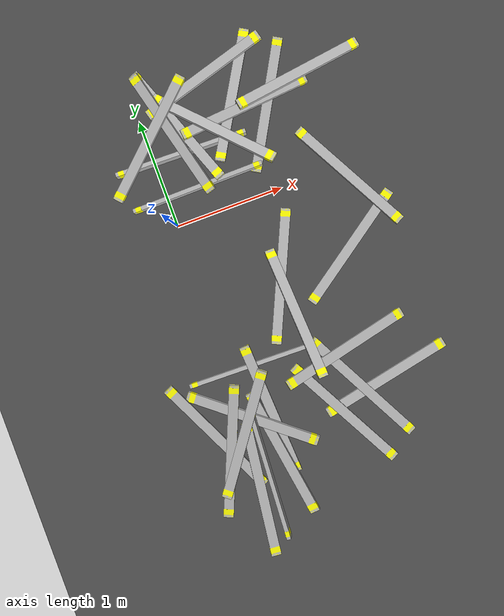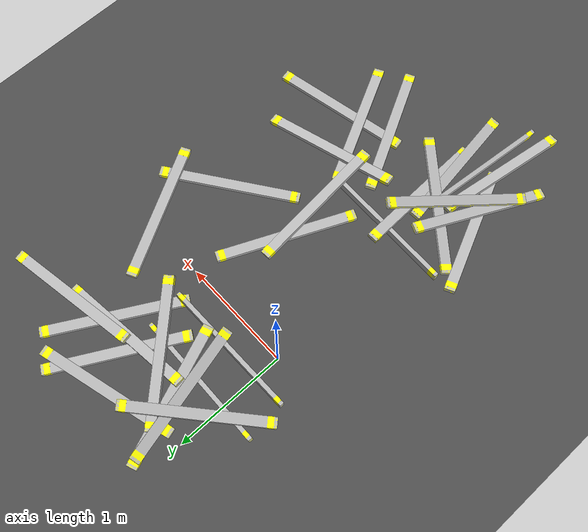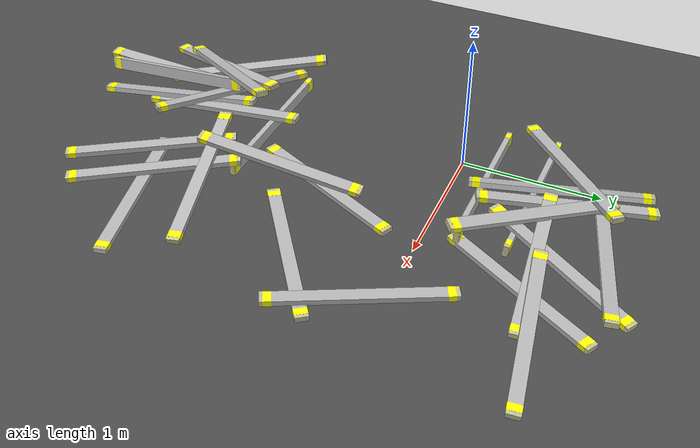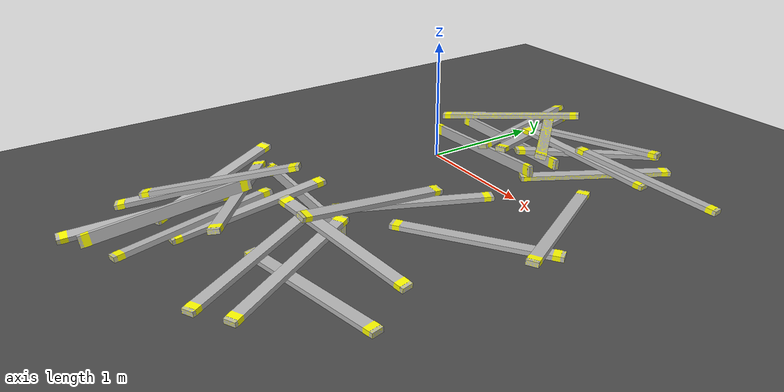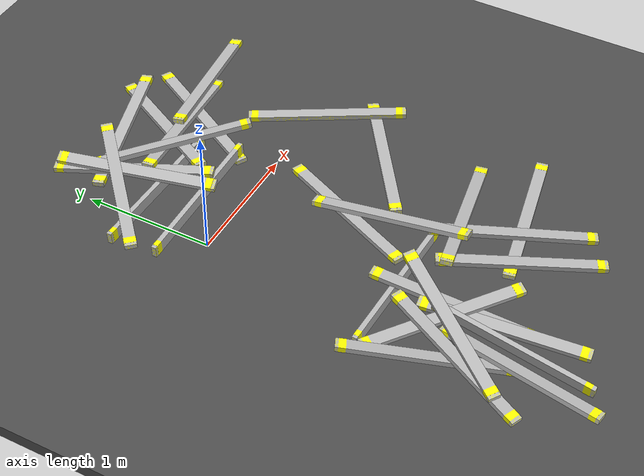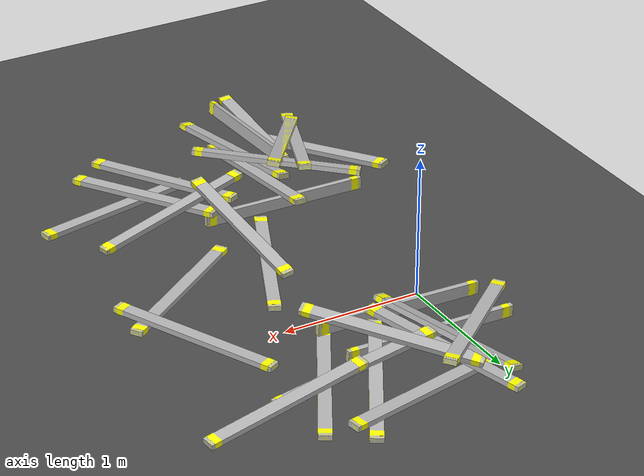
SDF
<sdf version="1.6">
 <world name="default">
  <model name="ground_plane">
   <static>1</static>
   <link name="link">
    <collision name="collision">
     <geometry><plane><normal>0 0 1</normal><size>100 100</size></plane></geometry>
     <surface><friction><ode><mu>100</mu><mu2>50</mu2></ode></friction></surface>
    </collision>
    <visual name="visual">
     <cast_shadows>0</cast_shadows>
     <geometry><plane><normal>0 0 1</normal><size>100 100</size></plane></geometry>
     <material>
      <script><uri>file://media/materials/scripts/gazebo.material</uri><name>Gazebo/Grey</name></script>
     </material>
    </visual>
   </link>
  </model>
  <model name="asphalt_plane">
   <static>1</static>
   <link name="link">
    <collision name="collision"><geometry><box><size>20 20 0.1</size></box></geometry></collision>
    <visual name="visual">
     <cast_shadows>0</cast_shadows>
     <geometry><box><size>20 20 0.1</size></box></geometry>
     <material>
      <script>
       <uri>model://asphalt_plane/materials/scripts</uri>
       <uri>model://asphalt_plane/materials/textures</uri>
       <name>vrc/asphalt</name>
      </script>
     </material>
    </visual>
   </link>
   <pose>0.013797 -0.037077 0 0 -0 0</pose>
  </model>
  <model name="lumber_2x4x48">
   <link name="link">
    <inertial>
     <mass>1.4111</mass>
     <inertia><ixx>0.0011</ixx><ixy>0</ixy><ixz>0</ixz><iyy>0.1771</iyy><iyz>0</iyz><izz>0.1763</izz></inertia>
    </inertial>
    <collision name="collision">
     <geometry><box><size>1.2192 0.038 0.0888</size></box></geometry>
     <surface>
      <bounce><restitution_coefficient>0.01</restitution_coefficient><threshold>5</threshold></bounce>
      <friction><ode><mu>5</mu><mu2>5</mu2></ode></friction>
      <contact>
       <ode>
        <soft_cfm>0.001</soft_cfm>
        <kp>10000</kp>
        <kd>1000</kd>
        <max_vel>0.01</max_vel>
        <min_depth>0.001</min_depth>
       </ode>
      </contact>
     </surface>
    </collision>
    <visual name="visual">
     <geometry><mesh><uri>model://drc_practice_2x4/meshes/2x4x48.dae</uri><scale>1 1 1</scale></mesh></geometry>
    </visual>
   </link>
   <pose>0.295779 0.247105 0.111808 -0.018486 -0.030942 0.006858</pose>
  </model>
  <model name="lumber_2x4x48_clone_1">
   <link name="link">
    <inertial>
     <mass>1.4111</mass>
     <inertia><ixx>0.0011</ixx><ixy>0</ixy><ixz>0</ixz><iyy>0.1771</iyy><iyz>0</iyz><izz>0.1763</izz></inertia>
    </inertial>
    <collision name="collision">
     <geometry><box><size>1.2192 0.038 0.0888</size></box></geometry>
     <surface>
      <bounce><restitution_coefficient>0.01</restitution_coefficient><threshold>5</threshold></bounce>
      <friction><ode><mu>5</mu><mu2>5</mu2></ode></friction>
      <contact>
       <ode>
        <soft_cfm>0.001</soft_cfm>
        <kp>10000</kp>
        <kd>1000</kd>
        <max_vel>0.01</max_vel>
        <min_depth>0.001</min_depth>
       </ode>
      </contact>
     </surface>
    </collision>
    <visual name="visual">
     <geometry><mesh><uri>model://drc_practice_2x4/meshes/2x4x48.dae</uri><scale>1 1 1</scale></mesh></geometry>
    </visual>
   </link>
   <pose>0.259884 0.582934 0.090207 -0.084588 0.000416 -0.020497</pose>
  </model>
  <model name="lumber_2x4x48_clone_3_clone_0">
   <link name="link">
    <inertial>
     <mass>1.4111</mass>
     <inertia><ixx>0.0011</ixx><ixy>0</ixy><ixz>0</ixz><iyy>0.1771</iyy><iyz>0</iyz><izz>0.1763</izz></inertia>
    </inertial>
    <collision name="collision">
     <geometry><box><size>1.2192 0.038 0.0888</size></box></geometry>
     <surface>
      <bounce><restitution_coefficient>0.01</restitution_coefficient><threshold>5</threshold></bounce>
      <friction><ode><mu>5</mu><mu2>5</mu2></ode></friction>
      <contact>
       <ode>
        <soft_cfm>0.001</soft_cfm>
        <kp>10000</kp>
        <kd>1000</kd>
        <max_vel>0.01</max_vel>
        <min_depth>0.001</min_depth>
       </ode>
      </contact>
     </surface>
    </collision>
    <visual name="visual">
     <geometry><mesh><uri>model://drc_practice_2x4/meshes/2x4x48.dae</uri><scale>1 1 1</scale></mesh></geometry>
    </visual>
   </link>
   <pose>0.048998 0.775245 0.217572 1.53349 -0.090464 0.730563</pose>
  </model>
  <model name="lumber_2x4x48_clone_3_clone_0_clone_0_clone_0">
   <link name="link">
    <inertial>
     <mass>1.4111</mass>
     <inertia><ixx>0.0011</ixx><ixy>0</ixy><ixz>0</ixz><iyy>0.1771</iyy><iyz>0</iyz><izz>0.1763</izz></inertia>
    </inertial>
    <collision name="collision">
     <geometry><box><size>1.2192 0.038 0.0888</size></box></geometry>
     <surface>
      <bounce><restitution_coefficient>0.01</restitution_coefficient><threshold>5</threshold></bounce>
      <friction><ode><mu>5</mu><mu2>5</mu2></ode></friction>
      <contact>
       <ode>
        <soft_cfm>0.001</soft_cfm>
        <kp>10000</kp>
        <kd>1000</kd>
        <max_vel>0.01</max_vel>
        <min_depth>0.001</min_depth>
       </ode>
      </contact>
     </surface>
    </collision>
    <visual name="visual">
     <geometry><mesh><uri>model://drc_practice_2x4/meshes/2x4x48.dae</uri><scale>1 1 1</scale></mesh></geometry>
    </visual>
   </link>
   <pose>0.045613 -1.83591 0.165662 1.42288 0.048365 2.46669</pose>
  </model>
  <model name="lumber_2x4x48_clone_0_clone_0">
   <link name="link">
    <inertial>
     <mass>1.4111</mass>
     <inertia><ixx>0.0011</ixx><ixy>0</ixy><ixz>0</ixz><iyy>0.1771</iyy><iyz>0</iyz><izz>0.1763</izz></inertia>
    </inertial>
    <collision name="collision">
     <geometry><box><size>1.2192 0.038 0.0888</size></box></geometry>
     <surface>
      <bounce><restitution_coefficient>0.01</restitution_coefficient><threshold>5</threshold></bounce>
      <friction><ode><mu>5</mu><mu2>5</mu2></ode></friction>
      <contact>
       <ode>
        <soft_cfm>0.001</soft_cfm>
        <kp>10000</kp>
        <kd>1000</kd>
        <max_vel>0.01</max_vel>
        <min_depth>0.001</min_depth>
       </ode>
      </contact>
     </surface>
    </collision>
    <visual name="visual">
     <geometry><mesh><uri>model://drc_practice_2x4/meshes/2x4x48.dae</uri><scale>1 1 1</scale></mesh></geometry>
    </visual>
   </link>
   <pose>0.22463 -1.40201 0.091879 -0.008334 0.000917 -0.020815</pose>
  </model>
  <model name="lumber_2x4x48_clone_3_clone_0_clone_1_clone_clone">
   <link name="link">
    <inertial>
     <mass>1.4111</mass>
     <inertia><ixx>0.0011</ixx><ixy>0</ixy><ixz>0</ixz><iyy>0.1771</iyy><iyz>0</iyz><izz>0.1763</izz></inertia>
    </inertial>
    <collision name="collision">
     <geometry><box><size>1.2192 0.038 0.0888</size></box></geometry>
     <surface>
      <bounce><restitution_coefficient>0.01</restitution_coefficient><threshold>5</threshold></bounce>
      <friction><ode><mu>5</mu><mu2>5</mu2></ode></friction>
      <contact>
       <ode>
        <soft_cfm>0.001</soft_cfm>
        <kp>10000</kp>
        <kd>1000</kd>
        <max_vel>0.01</max_vel>
        <min_depth>0.001</min_depth>
       </ode>
      </contact>
     </surface>
    </collision>
    <visual name="visual">
     <geometry><mesh><uri>model://drc_practice_2x4/meshes/2x4x48.dae</uri><scale>1 1 1</scale></mesh></geometry>
    </visual>
   </link>
   <pose>0.01851 -2.35439 0.166804 -0.140389 -0.118465 1.50446</pose>
  </model>
  <model name="lumber_2x4x48_clone_3_clone_0_clone_clone_0">
   <link name="link">
    <inertial>
     <mass>1.4111</mass>
     <inertia><ixx>0.0011</ixx><ixy>0</ixy><ixz>0</ixz><iyy>0.1771</iyy><iyz>0</iyz><izz>0.1763</izz></inertia>
    </inertial>
    <collision name="collision">
     <geometry><box><size>1.2192 0.038 0.0888</size></box></geometry>
     <surface>
      <bounce><restitution_coefficient>0.01</restitution_coefficient><threshold>5</threshold></bounce>
      <friction><ode><mu>5</mu><mu2>5</mu2></ode></friction>
      <contact>
       <ode>
        <soft_cfm>0.001</soft_cfm>
        <kp>10000</kp>
        <kd>1000</kd>
        <max_vel>0.01</max_vel>
        <min_depth>0.001</min_depth>
       </ode>
      </contact>
     </surface>
    </collision>
    <visual name="visual">
     <geometry><mesh><uri>model://drc_practice_2x4/meshes/2x4x48.dae</uri><scale>1 1 1</scale></mesh></geometry>
    </visual>
   </link>
   <pose>1.39218 -0.712522 0.067433 1.56623 0.000289 0.613652</pose>
  </model>
  <model name="lumber_2x4x48_clone_3_clone_0_clone_1_clone_0">
   <link name="link">
    <inertial>
     <mass>1.4111</mass>
     <inertia><ixx>0.0011</ixx><ixy>0</ixy><ixz>0</ixz><iyy>0.1771</iyy><iyz>0</iyz><izz>0.1763</izz></inertia>
    </inertial>
    <collision name="collision">
     <geometry><box><size>1.2192 0.038 0.0888</size></box></geometry>
     <surface>
      <bounce><restitution_coefficient>0.01</restitution_coefficient><threshold>5</threshold></bounce>
      <friction><ode><mu>5</mu><mu2>5</mu2></ode></friction>
      <contact>
       <ode>
        <soft_cfm>0.001</soft_cfm>
        <kp>10000</kp>
        <kd>1000</kd>
        <max_vel>0.01</max_vel>
        <min_depth>0.001</min_depth>
       </ode>
      </contact>
     </surface>
    </collision>
    <visual name="visual">
     <geometry><mesh><uri>model://drc_practice_2x4/meshes/2x4x48.dae</uri><scale>1 1 1</scale></mesh></geometry>
    </visual>
   </link>
   <pose>0.252357 0.755223 0.191565 1.29155 -0.009358 1.81656</pose>
  </model>
  <model name="lumber_2x4x48_clone_3_clone_0_clone_1_clone_1">
   <link name="link">
    <inertial>
     <mass>1.4111</mass>
     <inertia><ixx>0.0011</ixx><ixy>0</ixy><ixz>0</ixz><iyy>0.1771</iyy><iyz>0</iyz><izz>0.1763</izz></inertia>
    </inertial>
    <collision name="collision">
     <geometry><box><size>1.2192 0.038 0.0888</size></box></geometry>
     <surface>
      <bounce><restitution_coefficient>0.01</restitution_coefficient><threshold>5</threshold></bounce>
      <friction><ode><mu>5</mu><mu2>5</mu2></ode></friction>
      <contact>
       <ode>
        <soft_cfm>0.001</soft_cfm>
        <kp>10000</kp>
        <kd>1000</kd>
        <max_vel>0.01</max_vel>
        <min_depth>0.001</min_depth>
       </ode>
      </contact>
     </surface>
    </collision>
    <visual name="visual">
     <geometry><mesh><uri>model://drc_practice_2x4/meshes/2x4x48.dae</uri><scale>1 1 1</scale></mesh></geometry>
    </visual>
   </link>
   <pose>-0.107879 -2.46773 0.109949 -1.70153 0.060185 -1.70032</pose>
  </model>
  <model name="lumber_2x4x48_clone_3_clone_0_clone_1_clone_2">
   <link name="link">
    <inertial>
     <mass>1.4111</mass>
     <inertia><ixx>0.0011</ixx><ixy>0</ixy><ixz>0</ixz><iyy>0.1771</iyy><iyz>0</iyz><izz>0.1763</izz></inertia>
    </inertial>
    <collision name="collision">
     <geometry><box><size>1.2192 0.038 0.0888</size></box></geometry>
     <surface>
      <bounce><restitution_coefficient>0.01</restitution_coefficient><threshold>5</threshold></bounce>
      <friction><ode><mu>5</mu><mu2>5</mu2></ode></friction>
      <contact>
       <ode>
        <soft_cfm>0.001</soft_cfm>
        <kp>10000</kp>
        <kd>1000</kd>
        <max_vel>0.01</max_vel>
        <min_depth>0.001</min_depth>
       </ode>
      </contact>
     </surface>
    </collision>
    <visual name="visual">
     <geometry><mesh><uri>model://drc_practice_2x4/meshes/2x4x48.dae</uri><scale>1 1 1</scale></mesh></geometry>
    </visual>
   </link>
   <pose>0.221416 -1.82475 0.116837 -1.56047 0.082432 -1.52315</pose>
  </model>
  <model name="lumber_2x4x48_clone_3_clone_0_clone_clone_0_clone_0_clone">
   <link name="link">
    <inertial>
     <mass>1.4111</mass>
     <inertia><ixx>0.0011</ixx><ixy>0</ixy><ixz>0</ixz><iyy>0.1771</iyy><iyz>0</iyz><izz>0.1763</izz></inertia>
    </inertial>
    <collision name="collision">
     <geometry><box><size>1.2192 0.038 0.0888</size></box></geometry>
     <surface>
      <bounce><restitution_coefficient>0.01</restitution_coefficient><threshold>5</threshold></bounce>
      <friction><ode><mu>5</mu><mu2>5</mu2></ode></friction>
      <contact>
       <ode>
        <soft_cfm>0.001</soft_cfm>
        <kp>10000</kp>
        <kd>1000</kd>
        <max_vel>0.01</max_vel>
        <min_depth>0.001</min_depth>
       </ode>
      </contact>
     </surface>
    </collision>
    <visual name="visual">
     <geometry><mesh><uri>model://drc_practice_2x4/meshes/2x4x48.dae</uri><scale>1 1 1</scale></mesh></geometry>
    </visual>
   </link>
   <pose>0.606725 0.671106 0.228601 -1.76493 -0.127359 -0.83044</pose>
  </model>
  <model name="lumber_2x4x48_clone_3_clone_0_clone_clone_0_clone_0_clone_4">
   <link name="link">
    <inertial>
     <mass>1.4111</mass>
     <inertia><ixx>0.0011</ixx><ixy>0</ixy><ixz>0</ixz><iyy>0.1771</iyy><iyz>0</iyz><izz>0.1763</izz></inertia>
    </inertial>
    <collision name="collision">
     <geometry><box><size>1.2192 0.038 0.0888</size></box></geometry>
     <surface>
      <bounce><restitution_coefficient>0.01</restitution_coefficient><threshold>5</threshold></bounce>
      <friction><ode><mu>5</mu><mu2>5</mu2></ode></friction>
      <contact>
       <ode>
        <soft_cfm>0.001</soft_cfm>
        <kp>10000</kp>
        <kd>1000</kd>
        <max_vel>0.01</max_vel>
        <min_depth>0.001</min_depth>
       </ode>
      </contact>
     </surface>
    </collision>
    <visual name="visual">
     <geometry><mesh><uri>model://drc_practice_2x4/meshes/2x4x48.dae</uri><scale>1 1 1</scale></mesh></geometry>
    </visual>
   </link>
   <pose>1.05444 -1.91325 0.112046 -1.57473 0.073113 -1.08771</pose>
  </model>
  <model name="lumber_2x4x48_clone_3_clone_0_clone_clone_0_clone_0_clone_5">
   <link name="link">
    <inertial>
     <mass>1.4111</mass>
     <inertia><ixx>0.0011</ixx><ixy>0</ixy><ixz>0</ixz><iyy>0.1771</iyy><iyz>0</iyz><izz>0.1763</izz></inertia>
    </inertial>
    <collision name="collision">
     <geometry><box><size>1.2192 0.038 0.0888</size></box></geometry>
     <surface>
      <bounce><restitution_coefficient>0.01</restitution_coefficient><threshold>5</threshold></bounce>
      <friction><ode><mu>5</mu><mu2>5</mu2></ode></friction>
      <contact>
       <ode>
        <soft_cfm>0.001</soft_cfm>
        <kp>10000</kp>
        <kd>1000</kd>
        <max_vel>0.01</max_vel>
        <min_depth>0.001</min_depth>
       </ode>
      </contact>
     </surface>
    </collision>
    <visual name="visual">
     <geometry><mesh><uri>model://drc_practice_2x4/meshes/2x4x48.dae</uri><scale>1 1 1</scale></mesh></geometry>
    </visual>
   </link>
   <pose>1.5969 -0.113184 0.090619 -1.56747 -0.037507 -1.08262</pose>
  </model>
  <model name="lumber_2x4x48_clone_3_clone_0_clone_clone_0_clone_0_clone_8">
   <link name="link">
    <inertial>
     <mass>1.4111</mass>
     <inertia><ixx>0.0011</ixx><ixy>0</ixy><ixz>0</ixz><iyy>0.1771</iyy><iyz>0</iyz><izz>0.1763</izz></inertia>
    </inertial>
    <collision name="collision">
     <geometry><box><size>1.2192 0.038 0.0888</size></box></geometry>
     <surface>
      <bounce><restitution_coefficient>0.01</restitution_coefficient><threshold>5</threshold></bounce>
      <friction><ode><mu>5</mu><mu2>5</mu2></ode></friction>
      <contact>
       <ode>
        <soft_cfm>0.001</soft_cfm>
        <kp>10000</kp>
        <kd>1000</kd>
        <max_vel>0.01</max_vel>
        <min_depth>0.001</min_depth>
       </ode>
      </contact>
     </surface>
    </collision>
    <visual name="visual">
     <geometry><mesh><uri>model://drc_practice_2x4/meshes/2x4x48.dae</uri><scale>1 1 1</scale></mesh></geometry>
    </visual>
   </link>
   <pose>0.825363 -2.07883 0.10103 1.58693 0.053107 -1.08189</pose>
  </model>
  <model name="lumber_2x4x48_clone_3_clone_0_clone_clone_0_clone_0_clone_0_clone_0">
   <link name="link">
    <inertial>
     <mass>1.4111</mass>
     <inertia><ixx>0.0011</ixx><ixy>0</ixy><ixz>0</ixz><iyy>0.1771</iyy><iyz>0</iyz><izz>0.1763</izz></inertia>
    </inertial>
    <collision name="collision">
     <geometry><box><size>1.2192 0.038 0.0888</size></box></geometry>
     <surface>
      <bounce><restitution_coefficient>0.01</restitution_coefficient><threshold>5</threshold></bounce>
      <friction><ode><mu>5</mu><mu2>5</mu2></ode></friction>
      <contact>
       <ode>
        <soft_cfm>0.001</soft_cfm>
        <kp>10000</kp>
        <kd>1000</kd>
        <max_vel>0.01</max_vel>
        <min_depth>0.001</min_depth>
       </ode>
      </contact>
     </surface>
    </collision>
    <visual name="visual">
     <geometry><mesh><uri>model://drc_practice_2x4/meshes/2x4x48.dae</uri><scale>1 1 1</scale></mesh></geometry>
    </visual>
   </link>
   <pose>-0.310883 -1.88664 0.14279 -1.64254 0.119744 -1.15004</pose>
  </model>
  <model name="lumber_2x4x48_clone_3_clone_0_clone_clone_0_clone_0_clone_10">
   <link name="link">
    <inertial>
     <mass>1.4111</mass>
     <inertia><ixx>0.0011</ixx><ixy>0</ixy><ixz>0</ixz><iyy>0.1771</iyy><iyz>0</iyz><izz>0.1763</izz></inertia>
    </inertial>
    <collision name="collision">
     <geometry><box><size>1.2192 0.038 0.0888</size></box></geometry>
     <surface>
      <bounce><restitution_coefficient>0.01</restitution_coefficient><threshold>5</threshold></bounce>
      <friction><ode><mu>5</mu><mu2>5</mu2></ode></friction>
      <contact>
       <ode>
        <soft_cfm>0.001</soft_cfm>
        <kp>10000</kp>
        <kd>1000</kd>
        <max_vel>0.01</max_vel>
        <min_depth>0.001</min_depth>
       </ode>
      </contact>
     </surface>
    </collision>
    <visual name="visual">
     <geometry><mesh><uri>model://drc_practice_2x4/meshes/2x4x48.dae</uri><scale>1 1 1</scale></mesh></geometry>
    </visual>
   </link>
   <pose>0.3131 0.824211 0.133067 -1.53476 -0.083133 -1.219</pose>
  </model>
  <model name="lumber_2x4x48_clone_3_clone_0_clone_clone_0_clone_0_clone_11">
   <link name="link">
    <inertial>
     <mass>1.4111</mass>
     <inertia><ixx>0.0011</ixx><ixy>0</ixy><ixz>0</ixz><iyy>0.1771</iyy><iyz>0</iyz><izz>0.1763</izz></inertia>
    </inertial>
    <collision name="collision">
     <geometry><box><size>1.2192 0.038 0.0888</size></box></geometry>
     <surface>
      <bounce><restitution_coefficient>0.01</restitution_coefficient><threshold>5</threshold></bounce>
      <friction><ode><mu>5</mu><mu2>5</mu2></ode></friction>
      <contact>
       <ode>
        <soft_cfm>0.001</soft_cfm>
        <kp>10000</kp>
        <kd>1000</kd>
        <max_vel>0.01</max_vel>
        <min_depth>0.001</min_depth>
       </ode>
      </contact>
     </surface>
    </collision>
    <visual name="visual">
     <geometry><mesh><uri>model://drc_practice_2x4/meshes/2x4x48.dae</uri><scale>1 1 1</scale></mesh></geometry>
    </visual>
   </link>
   <pose>-0.232627 -2.05006 0.163119 1.56222 0.157755 -1.97429</pose>
  </model>
  <model name="lumber_2x4x48_clone_3_clone_0_clone_clone_0_clone_0_clone_11_clone">
   <link name="link">
    <inertial>
     <mass>1.4111</mass>
     <inertia><ixx>0.0011</ixx><ixy>0</ixy><ixz>0</ixz><iyy>0.1771</iyy><iyz>0</iyz><izz>0.1763</izz></inertia>
    </inertial>
    <collision name="collision">
     <geometry><box><size>1.2192 0.038 0.0888</size></box></geometry>
     <surface>
      <bounce><restitution_coefficient>0.01</restitution_coefficient><threshold>5</threshold></bounce>
      <friction><ode><mu>5</mu><mu2>5</mu2></ode></friction>
      <contact>
       <ode>
        <soft_cfm>0.001</soft_cfm>
        <kp>10000</kp>
        <kd>1000</kd>
        <max_vel>0.01</max_vel>
        <min_depth>0.001</min_depth>
       </ode>
      </contact>
     </surface>
    </collision>
    <visual name="visual">
     <geometry><mesh><uri>model://drc_practice_2x4/meshes/2x4x48.dae</uri><scale>1 1 1</scale></mesh></geometry>
    </visual>
   </link>
   <pose>-0.064556 -1.93496 0.258255 1.67682 0.20084 -2.19219</pose>
  </model>
  <model name="lumber_2x4x48_clone_3_clone_0_clone_clone_0_clone_0_clone_11_clone_11">
   <link name="link">
    <inertial>
     <mass>1.4111</mass>
     <inertia><ixx>0.0011</ixx><ixy>0</ixy><ixz>0</ixz><iyy>0.1771</iyy><iyz>0</iyz><izz>0.1763</izz></inertia>
    </inertial>
    <collision name="collision">
     <geometry><box><size>1.2192 0.038 0.0888</size></box></geometry>
     <surface>
      <bounce><restitution_coefficient>0.01</restitution_coefficient><threshold>5</threshold></bounce>
      <friction><ode><mu>5</mu><mu2>5</mu2></ode></friction>
      <contact>
       <ode>
        <soft_cfm>0.001</soft_cfm>
        <kp>10000</kp>
        <kd>1000</kd>
        <max_vel>0.01</max_vel>
        <min_depth>0.001</min_depth>
       </ode>
      </contact>
     </surface>
    </collision>
    <visual name="visual">
     <geometry><mesh><uri>model://drc_practice_2x4/meshes/2x4x48.dae</uri><scale>1 1 1</scale></mesh></geometry>
    </visual>
   </link>
   <pose>0.86844 0.914016 0.112279 1.58973 -0.075042 -2.09875</pose>
  </model>
  <model name="lumber_2x4x48_clone_3_clone_0_clone_clone_0_clone_0_clone_11_clone_12">
   <link name="link">
    <inertial>
     <mass>1.4111</mass>
     <inertia><ixx>0.0011</ixx><ixy>0</ixy><ixz>0</ixz><iyy>0.1771</iyy><iyz>0</iyz><izz>0.1763</izz></inertia>
    </inertial>
    <collision name="collision">
     <geometry><box><size>1.2192 0.038 0.0888</size></box></geometry>
     <surface>
      <bounce><restitution_coefficient>0.01</restitution_coefficient><threshold>5</threshold></bounce>
      <friction><ode><mu>5</mu><mu2>5</mu2></ode></friction>
      <contact>
       <ode>
        <soft_cfm>0.001</soft_cfm>
        <kp>10000</kp>
        <kd>1000</kd>
        <max_vel>0.01</max_vel>
        <min_depth>0.001</min_depth>
       </ode>
      </contact>
     </surface>
    </collision>
    <visual name="visual">
     <geometry><mesh><uri>model://drc_practice_2x4/meshes/2x4x48.dae</uri><scale>1 1 1</scale></mesh></geometry>
    </visual>
   </link>
   <pose>1.13103 0.733805 0.067402 1.57703 0.000374 -2.0847</pose>
  </model>
  <model name="lumber_2x4x48_clone_3_clone_0_clone_clone_0_clone_0_clone_11_clone_13">
   <link name="link">
    <inertial>
     <mass>1.4111</mass>
     <inertia><ixx>0.0011</ixx><ixy>0</ixy><ixz>0</ixz><iyy>0.1771</iyy><iyz>0</iyz><izz>0.1763</izz></inertia>
    </inertial>
    <collision name="collision">
     <geometry><box><size>1.2192 0.038 0.0888</size></box></geometry>
     <surface>
      <bounce><restitution_coefficient>0.01</restitution_coefficient><threshold>5</threshold></bounce>
      <friction><ode><mu>5</mu><mu2>5</mu2></ode></friction>
      <contact>
       <ode>
        <soft_cfm>0.001</soft_cfm>
        <kp>10000</kp>
        <kd>1000</kd>
        <max_vel>0.01</max_vel>
        <min_depth>0.001</min_depth>
       </ode>
      </contact>
     </surface>
    </collision>
    <visual name="visual">
     <geometry><mesh><uri>model://drc_practice_2x4/meshes/2x4x48.dae</uri><scale>1 1 1</scale></mesh></geometry>
    </visual>
   </link>
   <pose>0.717058 -0.749332 0.067492 1.57438 -7.1e-05 -1.99457</pose>
  </model>
  <model name="lumber_2x4x48_clone_3_clone_0_clone_clone_0_clone_0_clone_11_clone_14_clone_clone">
   <link name="link">
    <inertial>
     <mass>1.4111</mass>
     <inertia><ixx>0.0011</ixx><ixy>0</ixy><ixz>0</ixz><iyy>0.1771</iyy><iyz>0</iyz><izz>0.1763</izz></inertia>
    </inertial>
    <collision name="collision">
     <geometry><box><size>1.2192 0.038 0.0888</size></box></geometry>
     <surface>
      <bounce><restitution_coefficient>0.01</restitution_coefficient><threshold>5</threshold></bounce>
      <friction><ode><mu>5</mu><mu2>5</mu2></ode></friction>
      <contact>
       <ode>
        <soft_cfm>0.001</soft_cfm>
        <kp>10000</kp>
        <kd>1000</kd>
        <max_vel>0.01</max_vel>
        <min_depth>0.001</min_depth>
       </ode>
      </contact>
     </surface>
    </collision>
    <visual name="visual">
     <geometry><mesh><uri>model://drc_practice_2x4/meshes/2x4x48.dae</uri><scale>1 1 1</scale></mesh></geometry>
    </visual>
   </link>
   <pose>1.28113 -1.92039 0.06724 1.56104 0.000508 -2.93903</pose>
  </model>
  <model name="lumber_2x4x48_clone_3_clone_0_clone_clone_0_clone_0_clone_11_clone_14_clone_clone_0">
   <link name="link">
    <inertial>
     <mass>1.4111</mass>
     <inertia><ixx>0.0011</ixx><ixy>0</ixy><ixz>0</ixz><iyy>0.1771</iyy><iyz>0</iyz><izz>0.1763</izz></inertia>
    </inertial>
    <collision name="collision">
     <geometry><box><size>1.2192 0.038 0.0888</size></box></geometry>
     <surface>
      <bounce><restitution_coefficient>0.01</restitution_coefficient><threshold>5</threshold></bounce>
      <friction><ode><mu>5</mu><mu2>5</mu2></ode></friction>
      <contact>
       <ode>
        <soft_cfm>0.001</soft_cfm>
        <kp>10000</kp>
        <kd>1000</kd>
        <max_vel>0.01</max_vel>
        <min_depth>0.001</min_depth>
       </ode>
      </contact>
     </surface>
    </collision>
    <visual name="visual">
     <geometry><mesh><uri>model://drc_practice_2x4/meshes/2x4x48.dae</uri><scale>1 1 1</scale></mesh></geometry>
    </visual>
   </link>
   <pose>0.685546 1.16613 0.103211 1.64912 0.054665 -2.87423</pose>
  </model>
  <model name="lumber_2x4x48_clone_3_clone_0_clone_clone_0_clone_0_clone_11_clone_14_clone_clone_1">
   <link name="link">
    <inertial>
     <mass>1.4111</mass>
     <inertia><ixx>0.0011</ixx><ixy>0</ixy><ixz>0</ixz><iyy>0.1771</iyy><iyz>0</iyz><izz>0.1763</izz></inertia>
    </inertial>
    <collision name="collision">
     <geometry><box><size>1.2192 0.038 0.0888</size></box></geometry>
     <surface>
      <bounce><restitution_coefficient>0.01</restitution_coefficient><threshold>5</threshold></bounce>
      <friction><ode><mu>5</mu><mu2>5</mu2></ode></friction>
      <contact>
       <ode>
        <soft_cfm>0.001</soft_cfm>
        <kp>10000</kp>
        <kd>1000</kd>
        <max_vel>0.01</max_vel>
        <min_depth>0.001</min_depth>
       </ode>
      </contact>
     </surface>
    </collision>
    <visual name="visual">
     <geometry><mesh><uri>model://drc_practice_2x4/meshes/2x4x48.dae</uri><scale>1 1 1</scale></mesh></geometry>
    </visual>
   </link>
   <pose>0.932877 0.773468 0.143192 1.60226 -0.085222 -3.03792</pose>
  </model>
  <model name="lumber_2x4x48_clone_3_clone_0_clone_clone_0_clone_0_clone_11_clone_14_clone_clone_6">
   <link name="link">
    <inertial>
     <mass>1.4111</mass>
     <inertia><ixx>0.0011</ixx><ixy>0</ixy><ixz>0</ixz><iyy>0.1771</iyy><iyz>0</iyz><izz>0.1763</izz></inertia>
    </inertial>
    <collision name="collision">
     <geometry><box><size>1.2192 0.038 0.0888</size></box></geometry>
     <surface>
      <bounce><restitution_coefficient>0.01</restitution_coefficient><threshold>5</threshold></bounce>
      <friction><ode><mu>5</mu><mu2>5</mu2></ode></friction>
      <contact>
       <ode>
        <soft_cfm>0.001</soft_cfm>
        <kp>10000</kp>
        <kd>1000</kd>
        <max_vel>0.01</max_vel>
        <min_depth>0.001</min_depth>
       </ode>
      </contact>
     </surface>
    </collision>
    <visual name="visual">
     <geometry><mesh><uri>model://drc_practice_2x4/meshes/2x4x48.dae</uri><scale>1 1 1</scale></mesh></geometry>
    </visual>
   </link>
   <pose>1.02735 -1.5431 0.157759 1.53696 -0.144005 -2.93312</pose>
  </model>
  <model name="lumber_2x4x48_clone_3_clone_0_clone_clone_0_clone_0_clone_11_clone_14_clone_clone_7">
   <link name="link">
    <inertial>
     <mass>1.4111</mass>
     <inertia><ixx>0.0011</ixx><ixy>0</ixy><ixz>0</ixz><iyy>0.1771</iyy><iyz>0</iyz><izz>0.1763</izz></inertia>
    </inertial>
    <collision name="collision">
     <geometry><box><size>1.2192 0.038 0.0888</size></box></geometry>
     <surface>
      <bounce><restitution_coefficient>0.01</restitution_coefficient><threshold>5</threshold></bounce>
      <friction><ode><mu>5</mu><mu2>5</mu2></ode></friction>
      <contact>
       <ode>
        <soft_cfm>0.001</soft_cfm>
        <kp>10000</kp>
        <kd>1000</kd>
        <max_vel>0.01</max_vel>
        <min_depth>0.001</min_depth>
       </ode>
      </contact>
     </surface>
    </collision>
    <visual name="visual">
     <geometry><mesh><uri>model://drc_practice_2x4/meshes/2x4x48.dae</uri><scale>1 1 1</scale></mesh></geometry>
    </visual>
   </link>
   <pose>1.47999 0.888607 0.128215 1.66835 -0.092524 -2.98329</pose>
  </model>
  <model name="lumber_2x4x48_clone_3_clone_0_clone_clone_0_clone_0_clone_0_clone_1">
   <link name="link">
    <inertial>
     <mass>1.4111</mass>
     <inertia><ixx>0.0011</ixx><ixy>0</ixy><ixz>0</ixz><iyy>0.1771</iyy><iyz>0</iyz><izz>0.1763</izz></inertia>
    </inertial>
    <collision name="collision">
     <geometry><box><size>1.2192 0.038 0.0888</size></box></geometry>
     <surface>
      <bounce><restitution_coefficient>0.01</restitution_coefficient><threshold>5</threshold></bounce>
      <friction><ode><mu>5</mu><mu2>5</mu2></ode></friction>
      <contact>
       <ode>
        <soft_cfm>0.001</soft_cfm>
        <kp>10000</kp>
        <kd>1000</kd>
        <max_vel>0.01</max_vel>
        <min_depth>0.001</min_depth>
       </ode>
      </contact>
     </surface>
    </collision>
    <visual name="visual">
     <geometry><mesh><uri>model://drc_practice_2x4/meshes/2x4x48.dae</uri><scale>1 1 1</scale></mesh></geometry>
    </visual>
   </link>
   <pose>0.18832 -2.22277 0.115089 -1.40592 0.06579 -1.42352</pose>
  </model>
  <model name="lumber_2x4x48_clone_3_clone_0_clone_clone_0_clone_0_clone_0_clone_2">
   <link name="link">
    <inertial>
     <mass>1.4111</mass>
     <inertia><ixx>0.0011</ixx><ixy>0</ixy><ixz>0</ixz><iyy>0.1771</iyy><iyz>0</iyz><izz>0.1763</izz></inertia>
    </inertial>
    <collision name="collision">
     <geometry><box><size>1.2192 0.038 0.0888</size></box></geometry>
     <surface>
      <bounce><restitution_coefficient>0.01</restitution_coefficient><threshold>5</threshold></bounce>
      <friction><ode><mu>5</mu><mu2>5</mu2></ode></friction>
      <contact>
       <ode>
        <soft_cfm>0.001</soft_cfm>
        <kp>10000</kp>
        <kd>1000</kd>
        <max_vel>0.01</max_vel>
        <min_depth>0.001</min_depth>
       </ode>
      </contact>
     </surface>
    </collision>
    <visual name="visual">
     <geometry><mesh><uri>model://drc_practice_2x4/meshes/2x4x48.dae</uri><scale>1 1 1</scale></mesh></geometry>
    </visual>
   </link>
   <pose>0.726564 -1.09798 0.175318 -1.69467 -0.129656 -1.52097</pose>
  </model>
 </world>
</sdf>
